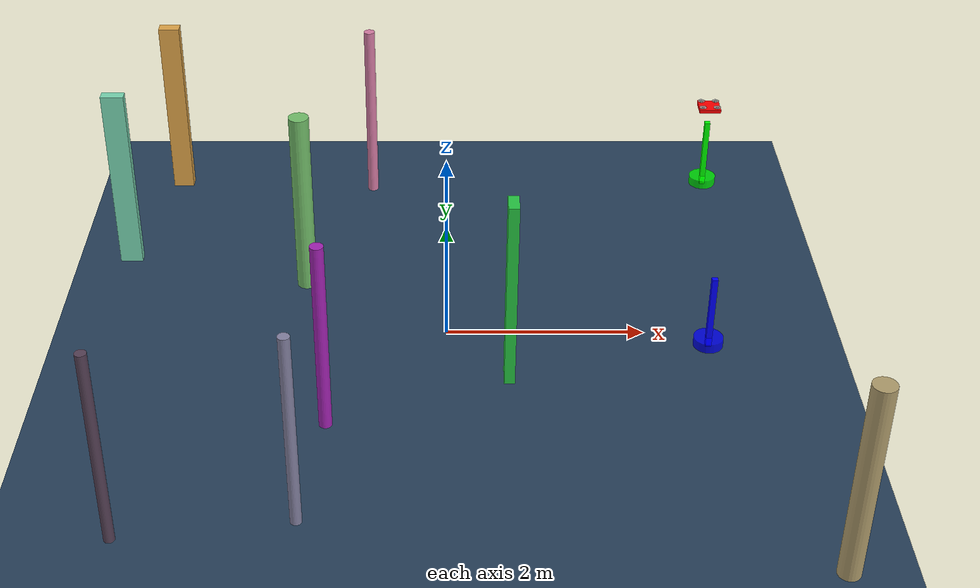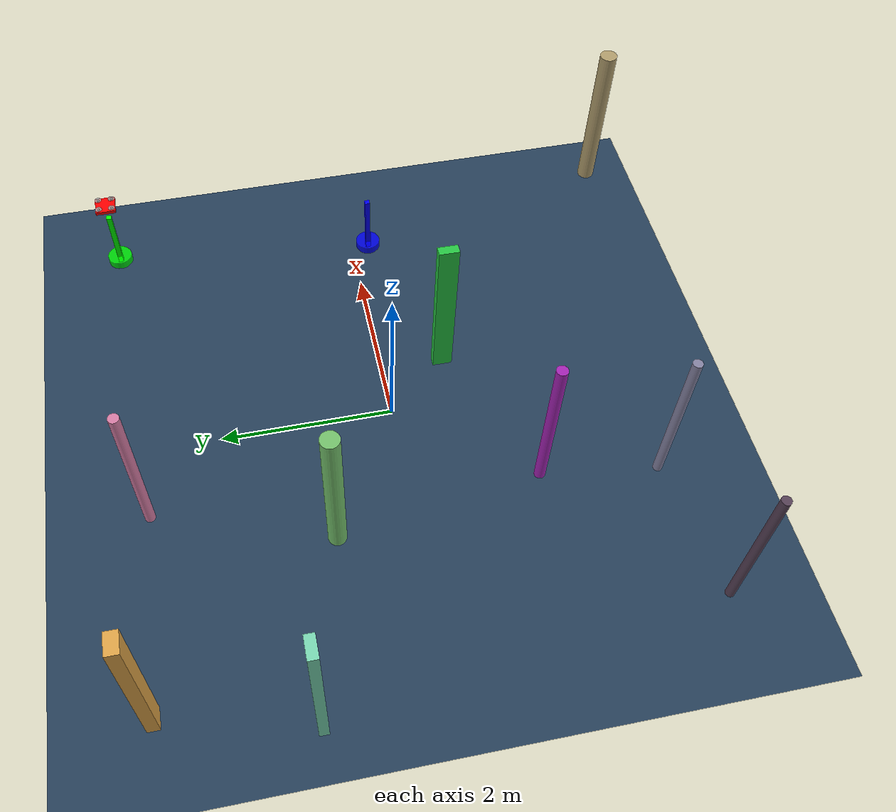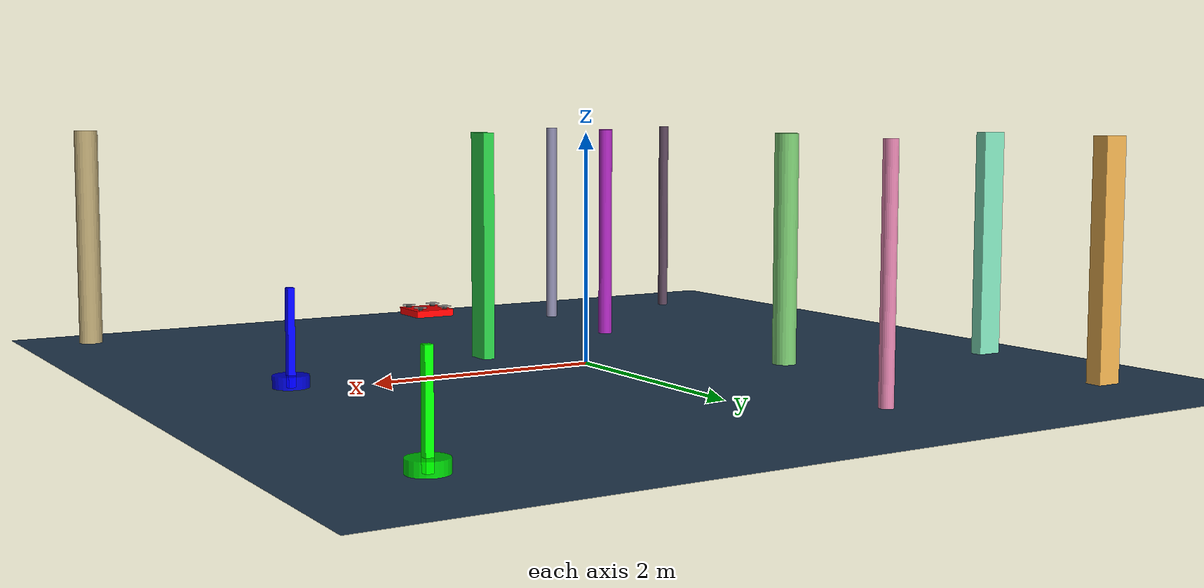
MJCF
<mujoco model="complex_uav_env">
  <compiler angle="degree" coordinate="local" inertiafromgeom="true"/>
  <option integrator="RK4" timestep="0.01"/>

  <visual>
    <headlight diffuse="0.6 0.6 0.6" ambient="0.3 0.3 0.3"/>
    <rgba haze="0.15 0.25 0.35 1"/>
    <global offwidth="2560" offheight="1440"/>
  </visual>

  <asset>
    <texture type="skybox" builtin="gradient" rgb1="0.3 0.5 0.7" rgb2="0 0 0" width="512" height="3072"/>
    <texture name="grid" type="2d" builtin="checker" rgb1="0.1 0.2 0.3" rgb2="0.2 0.3 0.4" width="512" height="512"/>
    <material name="grid" texture="grid" texrepeat="1 1" reflectance="0.2"/>
  </asset>

  <worldbody>
    <!-- Ground plane -->
    <geom name="ground" type="plane" size="4.0 4.0 0.1" material="grid"/>
    <light name="light1" pos="0 0 4" dir="0 0 -1" diffuse="1 1 1"/>

    <!-- Start position marker (green) -->
    <geom name="start_marker" type="cylinder" size="0.15 0.05" pos="3.0 3.0 0.05" rgba="0 1 0 0.8"/>
    <geom name="start_pole" type="box" size="0.03 0.03 0.4" pos="3.0 3.0 0.4" rgba="0 1 0 1"/>

    <!-- Goal position marker (blue) -->
    <geom name="goal_marker" type="cylinder" size="0.15 0.05" pos="2.6385645397750244 -0.20686646431188027 0.05" rgba="0 0 1 0.8"/>
    <geom name="goal_pole" type="box" size="0.03 0.03 0.4" pos="2.6385645397750244 -0.20686646431188027 0.4" rgba="0 0 1 1"/>

    <!-- UAV starting position -->
    <body name="chassis" pos="3.0 3.0 1.0">
      <joint type="free" name="root"/>
      <geom type="box" size="0.12 0.12 0.02" rgba="1.0 0.0 0.0 1.0" mass="0.8"/>

      <!-- Propeller arms and motors -->
      <geom type="box" size="0.08 0.01 0.005" pos="0 0 0.01" rgba="0.3 0.3 0.3 1"/>
      <geom type="box" size="0.01 0.08 0.005" pos="0 0 0.01" rgba="0.3 0.3 0.3 1"/>

      <!-- Motor visual geometry -->
      <geom type="cylinder" size="0.015 0.02" pos="0.08 0.08 0.015" rgba="0.2 0.2 0.2 1"/>
      <geom type="cylinder" size="0.015 0.02" pos="-0.08 0.08 0.015" rgba="0.2 0.2 0.2 1"/>
      <geom type="cylinder" size="0.015 0.02" pos="0.08 -0.08 0.015" rgba="0.2 0.2 0.2 1"/>
      <geom type="cylinder" size="0.015 0.02" pos="-0.08 -0.08 0.015" rgba="0.2 0.2 0.2 1"/>

      <!-- Propellers -->
      <geom type="cylinder" size="0.04 0.002" pos="0.08 0.08 0.035" rgba="0.7 0.7 0.7 0.8"/>
      <geom type="cylinder" size="0.04 0.002" pos="-0.08 0.08 0.035" rgba="0.7 0.7 0.7 0.8"/>
      <geom type="cylinder" size="0.04 0.002" pos="0.08 -0.08 0.035" rgba="0.7 0.7 0.7 0.8"/>
      <geom type="cylinder" size="0.04 0.002" pos="-0.08 -0.08 0.035" rgba="0.7 0.7 0.7 0.8"/>

      <!-- Sites for motor force application -->
      <site name="motor1" pos="0.08 0.08 0" size="0.01"/>
      <site name="motor2" pos="-0.08 0.08 0" size="0.01"/>
      <site name="motor3" pos="0.08 -0.08 0" size="0.01"/>
      <site name="motor4" pos="-0.08 -0.08 0" size="0.01"/>
    </body>
    <geom name="test_obs_0" type="cylinder" size="0.05410252983840777 1.0" pos="-1.313734931785357 -2.8072477814955414 1.0" rgba="0.5201108192178873 0.5119844879296392 0.6351983394029487 1.0"/>
    <geom name="test_obs_1" type="box" size="0.11763518798716194 0.05300782129024607 1.0" pos="-3.420756668761668 1.3632852614273956 1.0" rgba="0.4742100863600429 0.8390718219594094 0.6961728102244861 1.0"/>
    <geom name="test_obs_2" type="cylinder" size="0.05118001270489433 1.0" pos="-2.90616315968449 -3.035564185754571 1.0" rgba="0.33726409228703724 0.25624757623630323 0.3379590280892011 1.0"/>
    <geom name="test_obs_3" type="cylinder" size="0.10364960235138901 1.0" pos="-1.4802110409082463 0.8896505764076318 1.0" rgba="0.45564898449626245 0.7540054511999255 0.42107544005451547 1.0"/>
    <geom name="test_obs_4" type="cylinder" size="0.05891808795417191 1.0" pos="-0.8515090604157985 2.865643503644523 1.0" rgba="0.8407559192988259 0.4895280970255306 0.6468966830670517 1.0"/>
    <geom name="test_obs_5" type="cylinder" size="0.10539733643179833 1.0" pos="3.387990884253158 -3.4317424832110506 1.0" rgba="0.6920438333129425 0.6163120886863738 0.42600245777124457 1.0"/>
    <geom name="test_obs_6" type="cylinder" size="0.06379630848358 1.0" pos="-1.1393472242318823 -1.474031596398775 1.0" rgba="0.6477349828775202 0.13877892477307166 0.7106347390796195 1.0"/>
    <geom name="test_obs_7" type="box" size="0.05301099949170567 0.11488547307475606 1.0" pos="0.6161474293896119 -0.7371710557452152 1.0" rgba="0.15317136090819572 0.7774155292928272 0.2619703544150498 1.0"/>
    <geom name="test_obs_8" type="box" size="0.11167128655341707 0.06857626454225788 1.0" pos="-3.0704809772679957 2.979546833736608 1.0" rgba="0.8740620000638799 0.6467191610301917 0.28441856580603675 1.0"/>
  </worldbody>

  <actuator>
    <motor name="m1" gear="0 0 1 0 0 0" site="motor1"/>
    <motor name="m2" gear="0 0 1 0 0 0" site="motor2"/>
    <motor name="m3" gear="0 0 1 0 0 0" site="motor3"/>
    <motor name="m4" gear="0 0 1 0 0 0" site="motor4"/>
  </actuator>
</mujoco>
